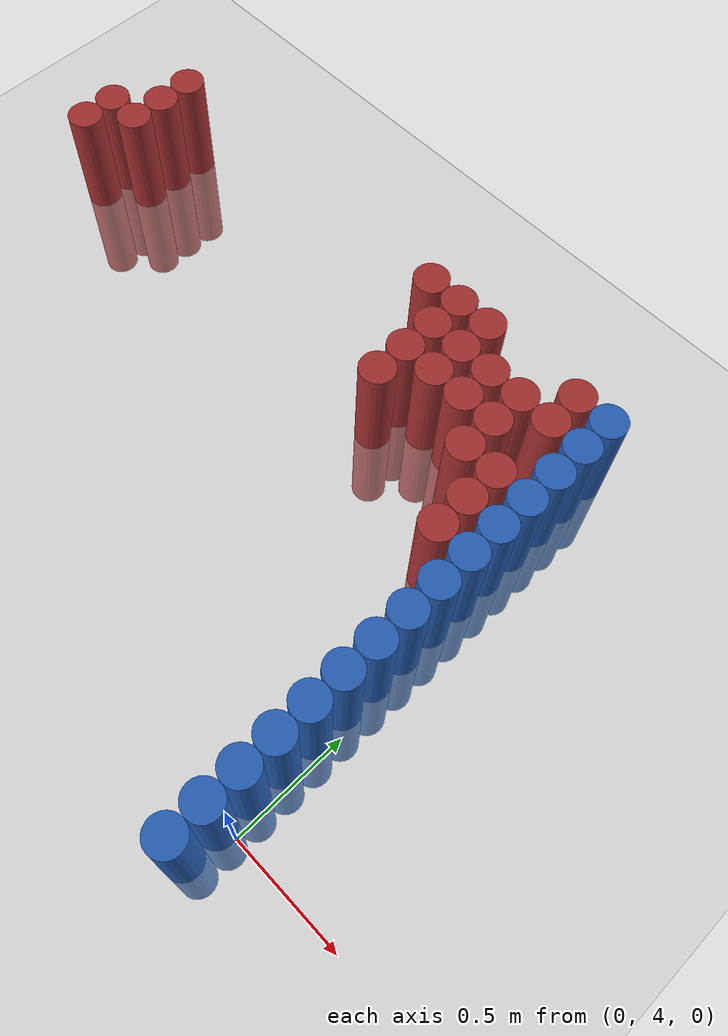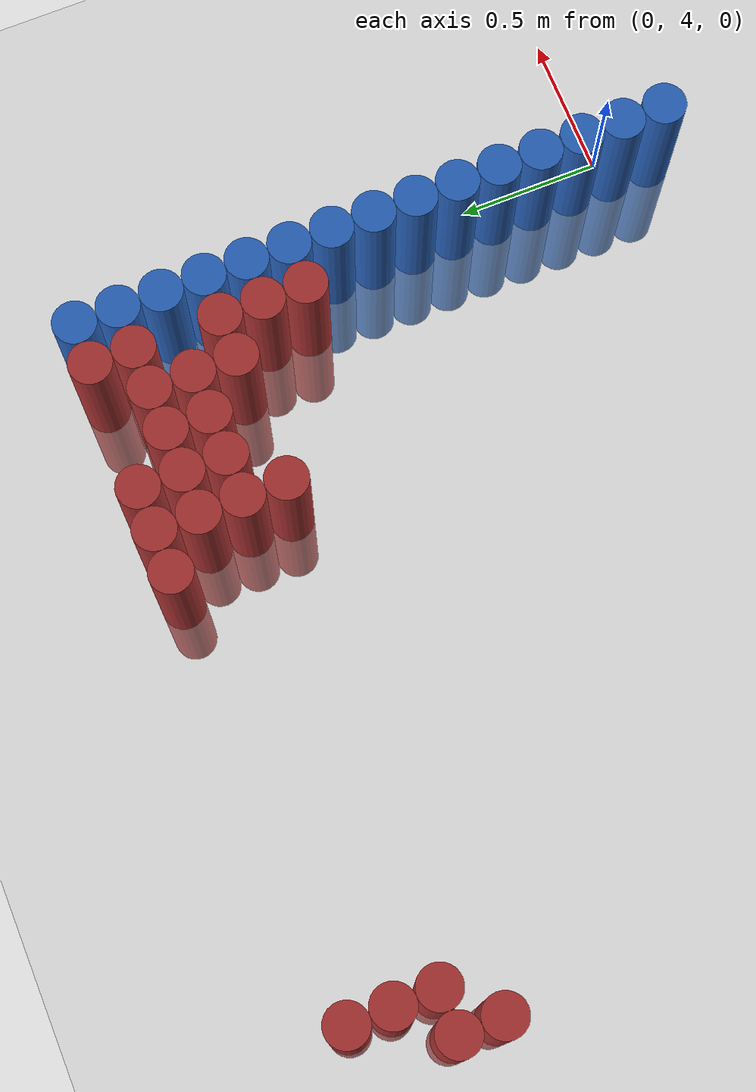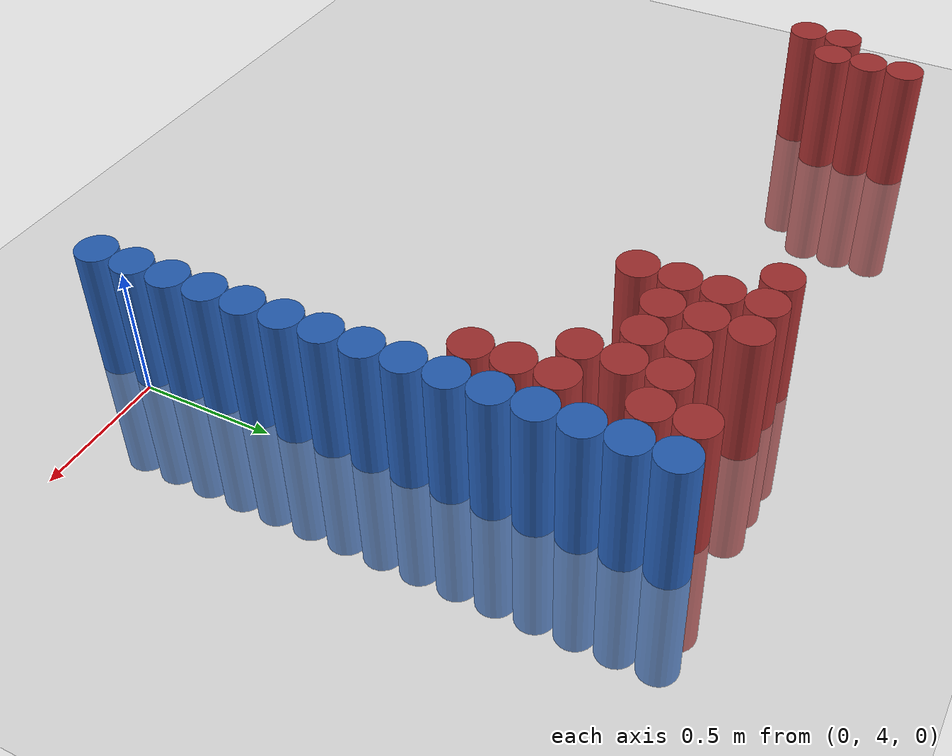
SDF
<sdf version="1.6">
 <world name="default">
  <model name="ground_plane">
   <static>1</static>
   <link name="link">
    <collision name="collision">
     <geometry><plane><normal>0 0 1</normal><size>100 100</size></plane></geometry>
     <surface><friction><ode><mu>100</mu><mu2>50</mu2></ode></friction></surface>
    </collision>
    <visual name="visual">
     <cast_shadows>0</cast_shadows>
     <geometry><plane><normal>0 0 1</normal><size>100 100</size></plane></geometry>
     <material>
      <script><uri>file://media/materials/scripts/gazebo.material</uri><name>Gazebo/Grey</name></script>
     </material>
    </visual>
   </link>
  </model>
  <model name="unit_cylinder_78">
   <static>1</static>
   <pose>-0.075000 3.825000 0.000000 0.000000 0.000000 0.000000</pose>
   <link name="link">
    <inertial>
     <mass>1</mass>
     <inertia><ixx>0.145833</ixx><ixy>0</ixy><ixz>0</ixz><iyy>0.145833</iyy><iyz>0</iyz><izz>0.125</izz></inertia>
    </inertial>
    <collision name="collision">
     <geometry><cylinder><radius>0.075000</radius><length>1</length></cylinder></geometry>
    </collision>
    <visual name="visual">
     <geometry><cylinder><radius>0.075000</radius><length>1</length></cylinder></geometry>
     <material>
      <ambient>0.152000 0.379000 0.720000 1</ambient>
      <diffuse>0.152000 0.379000 0.720000 1</diffuse>
     </material>
     <material>
      <script><name>Gazebo/Grey</name><uri>file://media/materials/scripts/gazebo.material</uri></script>
     </material>
    </visual>
    <sensor name="sensor_contact" type="contact"><contact><collision>collision</collision></contact></sensor>
   </link>
   <plugin filename="gz-sim-touchplugin-system" name="gz::sim::systems::TouchPlugin">
    <target>robot</target>
    <namespace>robot</namespace>
    <time>0.001</time>
    <enabled>true</enabled>
   </plugin>
  </model>
  <model name="unit_cylinder_80">
   <static>1</static>
   <pose>-0.075000 3.975000 0.000000 0.000000 0.000000 0.000000</pose>
   <link name="link">
    <inertial>
     <mass>1</mass>
     <inertia><ixx>0.145833</ixx><ixy>0</ixy><ixz>0</ixz><iyy>0.145833</iyy><iyz>0</iyz><izz>0.125</izz></inertia>
    </inertial>
    <collision name="collision">
     <geometry><cylinder><radius>0.075000</radius><length>1</length></cylinder></geometry>
    </collision>
    <visual name="visual">
     <geometry><cylinder><radius>0.075000</radius><length>1</length></cylinder></geometry>
     <material>
      <ambient>0.152000 0.379000 0.720000 1</ambient>
      <diffuse>0.152000 0.379000 0.720000 1</diffuse>
     </material>
     <material>
      <script><name>Gazebo/Grey</name><uri>file://media/materials/scripts/gazebo.material</uri></script>
     </material>
    </visual>
    <sensor name="sensor_contact" type="contact"><contact><collision>collision</collision></contact></sensor>
   </link>
   <plugin filename="gz-sim-touchplugin-system" name="gz::sim::systems::TouchPlugin">
    <target>robot</target>
    <namespace>robot</namespace>
    <time>0.001</time>
    <enabled>true</enabled>
   </plugin>
  </model>
  <model name="unit_cylinder_82">
   <static>1</static>
   <pose>-0.075000 4.125000 0.000000 0.000000 0.000000 0.000000</pose>
   <link name="link">
    <inertial>
     <mass>1</mass>
     <inertia><ixx>0.145833</ixx><ixy>0</ixy><ixz>0</ixz><iyy>0.145833</iyy><iyz>0</iyz><izz>0.125</izz></inertia>
    </inertial>
    <collision name="collision">
     <geometry><cylinder><radius>0.075000</radius><length>1</length></cylinder></geometry>
    </collision>
    <visual name="visual">
     <geometry><cylinder><radius>0.075000</radius><length>1</length></cylinder></geometry>
     <material>
      <ambient>0.152000 0.379000 0.720000 1</ambient>
      <diffuse>0.152000 0.379000 0.720000 1</diffuse>
     </material>
     <material>
      <script><name>Gazebo/Grey</name><uri>file://media/materials/scripts/gazebo.material</uri></script>
     </material>
    </visual>
    <sensor name="sensor_contact" type="contact"><contact><collision>collision</collision></contact></sensor>
   </link>
   <plugin filename="gz-sim-touchplugin-system" name="gz::sim::systems::TouchPlugin">
    <target>robot</target>
    <namespace>robot</namespace>
    <time>0.001</time>
    <enabled>true</enabled>
   </plugin>
  </model>
  <model name="unit_cylinder_84">
   <static>1</static>
   <pose>-0.075000 4.275000 0.000000 0.000000 0.000000 0.000000</pose>
   <link name="link">
    <inertial>
     <mass>1</mass>
     <inertia><ixx>0.145833</ixx><ixy>0</ixy><ixz>0</ixz><iyy>0.145833</iyy><iyz>0</iyz><izz>0.125</izz></inertia>
    </inertial>
    <collision name="collision">
     <geometry><cylinder><radius>0.075000</radius><length>1</length></cylinder></geometry>
    </collision>
    <visual name="visual">
     <geometry><cylinder><radius>0.075000</radius><length>1</length></cylinder></geometry>
     <material>
      <ambient>0.152000 0.379000 0.720000 1</ambient>
      <diffuse>0.152000 0.379000 0.720000 1</diffuse>
     </material>
     <material>
      <script><name>Gazebo/Grey</name><uri>file://media/materials/scripts/gazebo.material</uri></script>
     </material>
    </visual>
    <sensor name="sensor_contact" type="contact"><contact><collision>collision</collision></contact></sensor>
   </link>
   <plugin filename="gz-sim-touchplugin-system" name="gz::sim::systems::TouchPlugin">
    <target>robot</target>
    <namespace>robot</namespace>
    <time>0.001</time>
    <enabled>true</enabled>
   </plugin>
  </model>
  <model name="unit_cylinder_86">
   <static>1</static>
   <pose>-0.075000 4.425000 0.000000 0.000000 0.000000 0.000000</pose>
   <link name="link">
    <inertial>
     <mass>1</mass>
     <inertia><ixx>0.145833</ixx><ixy>0</ixy><ixz>0</ixz><iyy>0.145833</iyy><iyz>0</iyz><izz>0.125</izz></inertia>
    </inertial>
    <collision name="collision">
     <geometry><cylinder><radius>0.075000</radius><length>1</length></cylinder></geometry>
    </collision>
    <visual name="visual">
     <geometry><cylinder><radius>0.075000</radius><length>1</length></cylinder></geometry>
     <material>
      <ambient>0.152000 0.379000 0.720000 1</ambient>
      <diffuse>0.152000 0.379000 0.720000 1</diffuse>
     </material>
     <material>
      <script><name>Gazebo/Grey</name><uri>file://media/materials/scripts/gazebo.material</uri></script>
     </material>
    </visual>
    <sensor name="sensor_contact" type="contact"><contact><collision>collision</collision></contact></sensor>
   </link>
   <plugin filename="gz-sim-touchplugin-system" name="gz::sim::systems::TouchPlugin">
    <target>robot</target>
    <namespace>robot</namespace>
    <time>0.001</time>
    <enabled>true</enabled>
   </plugin>
  </model>
  <model name="unit_cylinder_88">
   <static>1</static>
   <pose>-0.075000 4.575000 0.000000 0.000000 0.000000 0.000000</pose>
   <link name="link">
    <inertial>
     <mass>1</mass>
     <inertia><ixx>0.145833</ixx><ixy>0</ixy><ixz>0</ixz><iyy>0.145833</iyy><iyz>0</iyz><izz>0.125</izz></inertia>
    </inertial>
    <collision name="collision">
     <geometry><cylinder><radius>0.075000</radius><length>1</length></cylinder></geometry>
    </collision>
    <visual name="visual">
     <geometry><cylinder><radius>0.075000</radius><length>1</length></cylinder></geometry>
     <material>
      <ambient>0.152000 0.379000 0.720000 1</ambient>
      <diffuse>0.152000 0.379000 0.720000 1</diffuse>
     </material>
     <material>
      <script><name>Gazebo/Grey</name><uri>file://media/materials/scripts/gazebo.material</uri></script>
     </material>
    </visual>
    <sensor name="sensor_contact" type="contact"><contact><collision>collision</collision></contact></sensor>
   </link>
   <plugin filename="gz-sim-touchplugin-system" name="gz::sim::systems::TouchPlugin">
    <target>robot</target>
    <namespace>robot</namespace>
    <time>0.001</time>
    <enabled>true</enabled>
   </plugin>
  </model>
  <model name="unit_cylinder_90">
   <static>1</static>
   <pose>-0.075000 4.725000 0.000000 0.000000 0.000000 0.000000</pose>
   <link name="link">
    <inertial>
     <mass>1</mass>
     <inertia><ixx>0.145833</ixx><ixy>0</ixy><ixz>0</ixz><iyy>0.145833</iyy><iyz>0</iyz><izz>0.125</izz></inertia>
    </inertial>
    <collision name="collision">
     <geometry><cylinder><radius>0.075000</radius><length>1</length></cylinder></geometry>
    </collision>
    <visual name="visual">
     <geometry><cylinder><radius>0.075000</radius><length>1</length></cylinder></geometry>
     <material>
      <ambient>0.152000 0.379000 0.720000 1</ambient>
      <diffuse>0.152000 0.379000 0.720000 1</diffuse>
     </material>
     <material>
      <script><name>Gazebo/Grey</name><uri>file://media/materials/scripts/gazebo.material</uri></script>
     </material>
    </visual>
    <sensor name="sensor_contact" type="contact"><contact><collision>collision</collision></contact></sensor>
   </link>
   <plugin filename="gz-sim-touchplugin-system" name="gz::sim::systems::TouchPlugin">
    <target>robot</target>
    <namespace>robot</namespace>
    <time>0.001</time>
    <enabled>true</enabled>
   </plugin>
  </model>
  <model name="unit_cylinder_92">
   <static>1</static>
   <pose>-0.075000 4.875000 0.000000 0.000000 0.000000 0.000000</pose>
   <link name="link">
    <inertial>
     <mass>1</mass>
     <inertia><ixx>0.145833</ixx><ixy>0</ixy><ixz>0</ixz><iyy>0.145833</iyy><iyz>0</iyz><izz>0.125</izz></inertia>
    </inertial>
    <collision name="collision">
     <geometry><cylinder><radius>0.075000</radius><length>1</length></cylinder></geometry>
    </collision>
    <visual name="visual">
     <geometry><cylinder><radius>0.075000</radius><length>1</length></cylinder></geometry>
     <material>
      <ambient>0.152000 0.379000 0.720000 1</ambient>
      <diffuse>0.152000 0.379000 0.720000 1</diffuse>
     </material>
     <material>
      <script><name>Gazebo/Grey</name><uri>file://media/materials/scripts/gazebo.material</uri></script>
     </material>
    </visual>
    <sensor name="sensor_contact" type="contact"><contact><collision>collision</collision></contact></sensor>
   </link>
   <plugin filename="gz-sim-touchplugin-system" name="gz::sim::systems::TouchPlugin">
    <target>robot</target>
    <namespace>robot</namespace>
    <time>0.001</time>
    <enabled>true</enabled>
   </plugin>
  </model>
  <model name="unit_cylinder_94">
   <static>1</static>
   <pose>-0.075000 5.025000 0.000000 0.000000 0.000000 0.000000</pose>
   <link name="link">
    <inertial>
     <mass>1</mass>
     <inertia><ixx>0.145833</ixx><ixy>0</ixy><ixz>0</ixz><iyy>0.145833</iyy><iyz>0</iyz><izz>0.125</izz></inertia>
    </inertial>
    <collision name="collision">
     <geometry><cylinder><radius>0.075000</radius><length>1</length></cylinder></geometry>
    </collision>
    <visual name="visual">
     <geometry><cylinder><radius>0.075000</radius><length>1</length></cylinder></geometry>
     <material>
      <ambient>0.152000 0.379000 0.720000 1</ambient>
      <diffuse>0.152000 0.379000 0.720000 1</diffuse>
     </material>
     <material>
      <script><name>Gazebo/Grey</name><uri>file://media/materials/scripts/gazebo.material</uri></script>
     </material>
    </visual>
    <sensor name="sensor_contact" type="contact"><contact><collision>collision</collision></contact></sensor>
   </link>
   <plugin filename="gz-sim-touchplugin-system" name="gz::sim::systems::TouchPlugin">
    <target>robot</target>
    <namespace>robot</namespace>
    <time>0.001</time>
    <enabled>true</enabled>
   </plugin>
  </model>
  <model name="unit_cylinder_198">
   <static>1</static>
   <pose>-2.625000 5.475000 0.000000 0.000000 0.000000 0.000000</pose>
   <link name="link">
    <inertial>
     <mass>1</mass>
     <inertia><ixx>0.145833</ixx><ixy>0</ixy><ixz>0</ixz><iyy>0.145833</iyy><iyz>0</iyz><izz>0.125</izz></inertia>
    </inertial>
    <collision name="collision">
     <geometry><cylinder><radius>0.075000</radius><length>1</length></cylinder></geometry>
    </collision>
    <visual name="visual">
     <geometry><cylinder><radius>0.075000</radius><length>1</length></cylinder></geometry>
     <material>
      <ambient>0.648000 0.192000 0.192000 1</ambient>
      <diffuse>0.648000 0.192000 0.192000 1</diffuse>
     </material>
     <material>
      <script><name>Gazebo/Grey</name><uri>file://media/materials/scripts/gazebo.material</uri></script>
     </material>
    </visual>
    <sensor name="sensor_contact" type="contact"><contact><collision>collision</collision></contact></sensor>
   </link>
   <plugin filename="gz-sim-touchplugin-system" name="gz::sim::systems::TouchPlugin">
    <target>robot</target>
    <namespace>robot</namespace>
    <time>0.001</time>
    <enabled>true</enabled>
   </plugin>
  </model>
  <model name="unit_cylinder_199">
   <static>1</static>
   <pose>-2.625000 5.625000 0.000000 0.000000 0.000000 0.000000</pose>
   <link name="link">
    <inertial>
     <mass>1</mass>
     <inertia><ixx>0.145833</ixx><ixy>0</ixy><ixz>0</ixz><iyy>0.145833</iyy><iyz>0</iyz><izz>0.125</izz></inertia>
    </inertial>
    <collision name="collision">
     <geometry><cylinder><radius>0.075000</radius><length>1</length></cylinder></geometry>
    </collision>
    <visual name="visual">
     <geometry><cylinder><radius>0.075000</radius><length>1</length></cylinder></geometry>
     <material>
      <ambient>0.648000 0.192000 0.192000 1</ambient>
      <diffuse>0.648000 0.192000 0.192000 1</diffuse>
     </material>
     <material>
      <script><name>Gazebo/Grey</name><uri>file://media/materials/scripts/gazebo.material</uri></script>
     </material>
    </visual>
    <sensor name="sensor_contact" type="contact"><contact><collision>collision</collision></contact></sensor>
   </link>
   <plugin filename="gz-sim-touchplugin-system" name="gz::sim::systems::TouchPlugin">
    <target>robot</target>
    <namespace>robot</namespace>
    <time>0.001</time>
    <enabled>true</enabled>
   </plugin>
  </model>
  <model name="unit_cylinder_206">
   <static>1</static>
   <pose>-2.475000 5.625000 0.000000 0.000000 0.000000 0.000000</pose>
   <link name="link">
    <inertial>
     <mass>1</mass>
     <inertia><ixx>0.145833</ixx><ixy>0</ixy><ixz>0</ixz><iyy>0.145833</iyy><iyz>0</iyz><izz>0.125</izz></inertia>
    </inertial>
    <collision name="collision">
     <geometry><cylinder><radius>0.075000</radius><length>1</length></cylinder></geometry>
    </collision>
    <visual name="visual">
     <geometry><cylinder><radius>0.075000</radius><length>1</length></cylinder></geometry>
     <material>
      <ambient>0.648000 0.192000 0.192000 1</ambient>
      <diffuse>0.648000 0.192000 0.192000 1</diffuse>
     </material>
     <material>
      <script><name>Gazebo/Grey</name><uri>file://media/materials/scripts/gazebo.material</uri></script>
     </material>
    </visual>
    <sensor name="sensor_contact" type="contact"><contact><collision>collision</collision></contact></sensor>
   </link>
   <plugin filename="gz-sim-touchplugin-system" name="gz::sim::systems::TouchPlugin">
    <target>robot</target>
    <namespace>robot</namespace>
    <time>0.001</time>
    <enabled>true</enabled>
   </plugin>
  </model>
  <model name="unit_cylinder_207">
   <static>1</static>
   <pose>-2.475000 5.775000 0.000000 0.000000 0.000000 0.000000</pose>
   <link name="link">
    <inertial>
     <mass>1</mass>
     <inertia><ixx>0.145833</ixx><ixy>0</ixy><ixz>0</ixz><iyy>0.145833</iyy><iyz>0</iyz><izz>0.125</izz></inertia>
    </inertial>
    <collision name="collision">
     <geometry><cylinder><radius>0.075000</radius><length>1</length></cylinder></geometry>
    </collision>
    <visual name="visual">
     <geometry><cylinder><radius>0.075000</radius><length>1</length></cylinder></geometry>
     <material>
      <ambient>0.648000 0.192000 0.192000 1</ambient>
      <diffuse>0.648000 0.192000 0.192000 1</diffuse>
     </material>
     <material>
      <script><name>Gazebo/Grey</name><uri>file://media/materials/scripts/gazebo.material</uri></script>
     </material>
    </visual>
    <sensor name="sensor_contact" type="contact"><contact><collision>collision</collision></contact></sensor>
   </link>
   <plugin filename="gz-sim-touchplugin-system" name="gz::sim::systems::TouchPlugin">
    <target>robot</target>
    <namespace>robot</namespace>
    <time>0.001</time>
    <enabled>true</enabled>
   </plugin>
  </model>
  <model name="unit_cylinder_208">
   <static>1</static>
   <pose>-2.475000 5.925000 0.000000 0.000000 0.000000 0.000000</pose>
   <link name="link">
    <inertial>
     <mass>1</mass>
     <inertia><ixx>0.145833</ixx><ixy>0</ixy><ixz>0</ixz><iyy>0.145833</iyy><iyz>0</iyz><izz>0.125</izz></inertia>
    </inertial>
    <collision name="collision">
     <geometry><cylinder><radius>0.075000</radius><length>1</length></cylinder></geometry>
    </collision>
    <visual name="visual">
     <geometry><cylinder><radius>0.075000</radius><length>1</length></cylinder></geometry>
     <material>
      <ambient>0.648000 0.192000 0.192000 1</ambient>
      <diffuse>0.648000 0.192000 0.192000 1</diffuse>
     </material>
     <material>
      <script><name>Gazebo/Grey</name><uri>file://media/materials/scripts/gazebo.material</uri></script>
     </material>
    </visual>
    <sensor name="sensor_contact" type="contact"><contact><collision>collision</collision></contact></sensor>
   </link>
   <plugin filename="gz-sim-touchplugin-system" name="gz::sim::systems::TouchPlugin">
    <target>robot</target>
    <namespace>robot</namespace>
    <time>0.001</time>
    <enabled>true</enabled>
   </plugin>
  </model>
  <model name="unit_cylinder_255">
   <static>1</static>
   <pose>-0.975000 5.925000 0.000000 0.000000 0.000000 0.000000</pose>
   <link name="link">
    <inertial>
     <mass>1</mass>
     <inertia><ixx>0.145833</ixx><ixy>0</ixy><ixz>0</ixz><iyy>0.145833</iyy><iyz>0</iyz><izz>0.125</izz></inertia>
    </inertial>
    <collision name="collision">
     <geometry><cylinder><radius>0.075000</radius><length>1</length></cylinder></geometry>
    </collision>
    <visual name="visual">
     <geometry><cylinder><radius>0.075000</radius><length>1</length></cylinder></geometry>
     <material>
      <ambient>0.648000 0.192000 0.192000 1</ambient>
      <diffuse>0.648000 0.192000 0.192000 1</diffuse>
     </material>
     <material>
      <script><name>Gazebo/Grey</name><uri>file://media/materials/scripts/gazebo.material</uri></script>
     </material>
    </visual>
    <sensor name="sensor_contact" type="contact"><contact><collision>collision</collision></contact></sensor>
   </link>
   <plugin filename="gz-sim-touchplugin-system" name="gz::sim::systems::TouchPlugin">
    <target>robot</target>
    <namespace>robot</namespace>
    <time>0.001</time>
    <enabled>true</enabled>
   </plugin>
  </model>
  <model name="unit_cylinder_259">
   <static>1</static>
   <pose>-0.825000 5.475000 0.000000 0.000000 0.000000 0.000000</pose>
   <link name="link">
    <inertial>
     <mass>1</mass>
     <inertia><ixx>0.145833</ixx><ixy>0</ixy><ixz>0</ixz><iyy>0.145833</iyy><iyz>0</iyz><izz>0.125</izz></inertia>
    </inertial>
    <collision name="collision">
     <geometry><cylinder><radius>0.075000</radius><length>1</length></cylinder></geometry>
    </collision>
    <visual name="visual">
     <geometry><cylinder><radius>0.075000</radius><length>1</length></cylinder></geometry>
     <material>
      <ambient>0.648000 0.192000 0.192000 1</ambient>
      <diffuse>0.648000 0.192000 0.192000 1</diffuse>
     </material>
     <material>
      <script><name>Gazebo/Grey</name><uri>file://media/materials/scripts/gazebo.material</uri></script>
     </material>
    </visual>
    <sensor name="sensor_contact" type="contact"><contact><collision>collision</collision></contact></sensor>
   </link>
   <plugin filename="gz-sim-touchplugin-system" name="gz::sim::systems::TouchPlugin">
    <target>robot</target>
    <namespace>robot</namespace>
    <time>0.001</time>
    <enabled>true</enabled>
   </plugin>
  </model>
  <model name="unit_cylinder_260">
   <static>1</static>
   <pose>-0.825000 5.625000 0.000000 0.000000 0.000000 0.000000</pose>
   <link name="link">
    <inertial>
     <mass>1</mass>
     <inertia><ixx>0.145833</ixx><ixy>0</ixy><ixz>0</ixz><iyy>0.145833</iyy><iyz>0</iyz><izz>0.125</izz></inertia>
    </inertial>
    <collision name="collision">
     <geometry><cylinder><radius>0.075000</radius><length>1</length></cylinder></geometry>
    </collision>
    <visual name="visual">
     <geometry><cylinder><radius>0.075000</radius><length>1</length></cylinder></geometry>
     <material>
      <ambient>0.648000 0.192000 0.192000 1</ambient>
      <diffuse>0.648000 0.192000 0.192000 1</diffuse>
     </material>
     <material>
      <script><name>Gazebo/Grey</name><uri>file://media/materials/scripts/gazebo.material</uri></script>
     </material>
    </visual>
    <sensor name="sensor_contact" type="contact"><contact><collision>collision</collision></contact></sensor>
   </link>
   <plugin filename="gz-sim-touchplugin-system" name="gz::sim::systems::TouchPlugin">
    <target>robot</target>
    <namespace>robot</namespace>
    <time>0.001</time>
    <enabled>true</enabled>
   </plugin>
  </model>
  <model name="unit_cylinder_261">
   <static>1</static>
   <pose>-0.825000 5.775000 0.000000 0.000000 0.000000 0.000000</pose>
   <link name="link">
    <inertial>
     <mass>1</mass>
     <inertia><ixx>0.145833</ixx><ixy>0</ixy><ixz>0</ixz><iyy>0.145833</iyy><iyz>0</iyz><izz>0.125</izz></inertia>
    </inertial>
    <collision name="collision">
     <geometry><cylinder><radius>0.075000</radius><length>1</length></cylinder></geometry>
    </collision>
    <visual name="visual">
     <geometry><cylinder><radius>0.075000</radius><length>1</length></cylinder></geometry>
     <material>
      <ambient>0.648000 0.192000 0.192000 1</ambient>
      <diffuse>0.648000 0.192000 0.192000 1</diffuse>
     </material>
     <material>
      <script><name>Gazebo/Grey</name><uri>file://media/materials/scripts/gazebo.material</uri></script>
     </material>
    </visual>
    <sensor name="sensor_contact" type="contact"><contact><collision>collision</collision></contact></sensor>
   </link>
   <plugin filename="gz-sim-touchplugin-system" name="gz::sim::systems::TouchPlugin">
    <target>robot</target>
    <namespace>robot</namespace>
    <time>0.001</time>
    <enabled>true</enabled>
   </plugin>
  </model>
  <model name="unit_cylinder_262">
   <static>1</static>
   <pose>-0.825000 5.925000 0.000000 0.000000 0.000000 0.000000</pose>
   <link name="link">
    <inertial>
     <mass>1</mass>
     <inertia><ixx>0.145833</ixx><ixy>0</ixy><ixz>0</ixz><iyy>0.145833</iyy><iyz>0</iyz><izz>0.125</izz></inertia>
    </inertial>
    <collision name="collision">
     <geometry><cylinder><radius>0.075000</radius><length>1</length></cylinder></geometry>
    </collision>
    <visual name="visual">
     <geometry><cylinder><radius>0.075000</radius><length>1</length></cylinder></geometry>
     <material>
      <ambient>0.648000 0.192000 0.192000 1</ambient>
      <diffuse>0.648000 0.192000 0.192000 1</diffuse>
     </material>
     <material>
      <script><name>Gazebo/Grey</name><uri>file://media/materials/scripts/gazebo.material</uri></script>
     </material>
    </visual>
    <sensor name="sensor_contact" type="contact"><contact><collision>collision</collision></contact></sensor>
   </link>
   <plugin filename="gz-sim-touchplugin-system" name="gz::sim::systems::TouchPlugin">
    <target>robot</target>
    <namespace>robot</namespace>
    <time>0.001</time>
    <enabled>true</enabled>
   </plugin>
  </model>
  <model name="unit_cylinder_268">
   <static>1</static>
   <pose>-0.675000 5.625000 0.000000 0.000000 0.000000 0.000000</pose>
   <link name="link">
    <inertial>
     <mass>1</mass>
     <inertia><ixx>0.145833</ixx><ixy>0</ixy><ixz>0</ixz><iyy>0.145833</iyy><iyz>0</iyz><izz>0.125</izz></inertia>
    </inertial>
    <collision name="collision">
     <geometry><cylinder><radius>0.075000</radius><length>1</length></cylinder></geometry>
    </collision>
    <visual name="visual">
     <geometry><cylinder><radius>0.075000</radius><length>1</length></cylinder></geometry>
     <material>
      <ambient>0.648000 0.192000 0.192000 1</ambient>
      <diffuse>0.648000 0.192000 0.192000 1</diffuse>
     </material>
     <material>
      <script><name>Gazebo/Grey</name><uri>file://media/materials/scripts/gazebo.material</uri></script>
     </material>
    </visual>
    <sensor name="sensor_contact" type="contact"><contact><collision>collision</collision></contact></sensor>
   </link>
   <plugin filename="gz-sim-touchplugin-system" name="gz::sim::systems::TouchPlugin">
    <target>robot</target>
    <namespace>robot</namespace>
    <time>0.001</time>
    <enabled>true</enabled>
   </plugin>
  </model>
  <model name="unit_cylinder_269">
   <static>1</static>
   <pose>-0.675000 5.775000 0.000000 0.000000 0.000000 0.000000</pose>
   <link name="link">
    <inertial>
     <mass>1</mass>
     <inertia><ixx>0.145833</ixx><ixy>0</ixy><ixz>0</ixz><iyy>0.145833</iyy><iyz>0</iyz><izz>0.125</izz></inertia>
    </inertial>
    <collision name="collision">
     <geometry><cylinder><radius>0.075000</radius><length>1</length></cylinder></geometry>
    </collision>
    <visual name="visual">
     <geometry><cylinder><radius>0.075000</radius><length>1</length></cylinder></geometry>
     <material>
      <ambient>0.648000 0.192000 0.192000 1</ambient>
      <diffuse>0.648000 0.192000 0.192000 1</diffuse>
     </material>
     <material>
      <script><name>Gazebo/Grey</name><uri>file://media/materials/scripts/gazebo.material</uri></script>
     </material>
    </visual>
    <sensor name="sensor_contact" type="contact"><contact><collision>collision</collision></contact></sensor>
   </link>
   <plugin filename="gz-sim-touchplugin-system" name="gz::sim::systems::TouchPlugin">
    <target>robot</target>
    <namespace>robot</namespace>
    <time>0.001</time>
    <enabled>true</enabled>
   </plugin>
  </model>
  <model name="unit_cylinder_270">
   <static>1</static>
   <pose>-0.675000 5.925000 0.000000 0.000000 0.000000 0.000000</pose>
   <link name="link">
    <inertial>
     <mass>1</mass>
     <inertia><ixx>0.145833</ixx><ixy>0</ixy><ixz>0</ixz><iyy>0.145833</iyy><iyz>0</iyz><izz>0.125</izz></inertia>
    </inertial>
    <collision name="collision">
     <geometry><cylinder><radius>0.075000</radius><length>1</length></cylinder></geometry>
    </collision>
    <visual name="visual">
     <geometry><cylinder><radius>0.075000</radius><length>1</length></cylinder></geometry>
     <material>
      <ambient>0.648000 0.192000 0.192000 1</ambient>
      <diffuse>0.648000 0.192000 0.192000 1</diffuse>
     </material>
     <material>
      <script><name>Gazebo/Grey</name><uri>file://media/materials/scripts/gazebo.material</uri></script>
     </material>
    </visual>
    <sensor name="sensor_contact" type="contact"><contact><collision>collision</collision></contact></sensor>
   </link>
   <plugin filename="gz-sim-touchplugin-system" name="gz::sim::systems::TouchPlugin">
    <target>robot</target>
    <namespace>robot</namespace>
    <time>0.001</time>
    <enabled>true</enabled>
   </plugin>
  </model>
  <model name="unit_cylinder_279">
   <static>1</static>
   <pose>-0.525000 5.625000 0.000000 0.000000 0.000000 0.000000</pose>
   <link name="link">
    <inertial>
     <mass>1</mass>
     <inertia><ixx>0.145833</ixx><ixy>0</ixy><ixz>0</ixz><iyy>0.145833</iyy><iyz>0</iyz><izz>0.125</izz></inertia>
    </inertial>
    <collision name="collision">
     <geometry><cylinder><radius>0.075000</radius><length>1</length></cylinder></geometry>
    </collision>
    <visual name="visual">
     <geometry><cylinder><radius>0.075000</radius><length>1</length></cylinder></geometry>
     <material>
      <ambient>0.648000 0.192000 0.192000 1</ambient>
      <diffuse>0.648000 0.192000 0.192000 1</diffuse>
     </material>
     <material>
      <script><name>Gazebo/Grey</name><uri>file://media/materials/scripts/gazebo.material</uri></script>
     </material>
    </visual>
    <sensor name="sensor_contact" type="contact"><contact><collision>collision</collision></contact></sensor>
   </link>
   <plugin filename="gz-sim-touchplugin-system" name="gz::sim::systems::TouchPlugin">
    <target>robot</target>
    <namespace>robot</namespace>
    <time>0.001</time>
    <enabled>true</enabled>
   </plugin>
  </model>
  <model name="unit_cylinder_280">
   <static>1</static>
   <pose>-0.525000 5.775000 0.000000 0.000000 0.000000 0.000000</pose>
   <link name="link">
    <inertial>
     <mass>1</mass>
     <inertia><ixx>0.145833</ixx><ixy>0</ixy><ixz>0</ixz><iyy>0.145833</iyy><iyz>0</iyz><izz>0.125</izz></inertia>
    </inertial>
    <collision name="collision">
     <geometry><cylinder><radius>0.075000</radius><length>1</length></cylinder></geometry>
    </collision>
    <visual name="visual">
     <geometry><cylinder><radius>0.075000</radius><length>1</length></cylinder></geometry>
     <material>
      <ambient>0.648000 0.192000 0.192000 1</ambient>
      <diffuse>0.648000 0.192000 0.192000 1</diffuse>
     </material>
     <material>
      <script><name>Gazebo/Grey</name><uri>file://media/materials/scripts/gazebo.material</uri></script>
     </material>
    </visual>
    <sensor name="sensor_contact" type="contact"><contact><collision>collision</collision></contact></sensor>
   </link>
   <plugin filename="gz-sim-touchplugin-system" name="gz::sim::systems::TouchPlugin">
    <target>robot</target>
    <namespace>robot</namespace>
    <time>0.001</time>
    <enabled>true</enabled>
   </plugin>
  </model>
  <model name="unit_cylinder_294">
   <static>1</static>
   <pose>-0.375000 5.475000 0.000000 0.000000 0.000000 0.000000</pose>
   <link name="link">
    <inertial>
     <mass>1</mass>
     <inertia><ixx>0.145833</ixx><ixy>0</ixy><ixz>0</ixz><iyy>0.145833</iyy><iyz>0</iyz><izz>0.125</izz></inertia>
    </inertial>
    <collision name="collision">
     <geometry><cylinder><radius>0.075000</radius><length>1</length></cylinder></geometry>
    </collision>
    <visual name="visual">
     <geometry><cylinder><radius>0.075000</radius><length>1</length></cylinder></geometry>
     <material>
      <ambient>0.648000 0.192000 0.192000 1</ambient>
      <diffuse>0.648000 0.192000 0.192000 1</diffuse>
     </material>
     <material>
      <script><name>Gazebo/Grey</name><uri>file://media/materials/scripts/gazebo.material</uri></script>
     </material>
    </visual>
    <sensor name="sensor_contact" type="contact"><contact><collision>collision</collision></contact></sensor>
   </link>
   <plugin filename="gz-sim-touchplugin-system" name="gz::sim::systems::TouchPlugin">
    <target>robot</target>
    <namespace>robot</namespace>
    <time>0.001</time>
    <enabled>true</enabled>
   </plugin>
  </model>
  <model name="unit_cylinder_295">
   <static>1</static>
   <pose>-0.375000 5.625000 0.000000 0.000000 0.000000 0.000000</pose>
   <link name="link">
    <inertial>
     <mass>1</mass>
     <inertia><ixx>0.145833</ixx><ixy>0</ixy><ixz>0</ixz><iyy>0.145833</iyy><iyz>0</iyz><izz>0.125</izz></inertia>
    </inertial>
    <collision name="collision">
     <geometry><cylinder><radius>0.075000</radius><length>1</length></cylinder></geometry>
    </collision>
    <visual name="visual">
     <geometry><cylinder><radius>0.075000</radius><length>1</length></cylinder></geometry>
     <material>
      <ambient>0.648000 0.192000 0.192000 1</ambient>
      <diffuse>0.648000 0.192000 0.192000 1</diffuse>
     </material>
     <material>
      <script><name>Gazebo/Grey</name><uri>file://media/materials/scripts/gazebo.material</uri></script>
     </material>
    </visual>
    <sensor name="sensor_contact" type="contact"><contact><collision>collision</collision></contact></sensor>
   </link>
   <plugin filename="gz-sim-touchplugin-system" name="gz::sim::systems::TouchPlugin">
    <target>robot</target>
    <namespace>robot</namespace>
    <time>0.001</time>
    <enabled>true</enabled>
   </plugin>
  </model>
  <model name="unit_cylinder_296">
   <static>1</static>
   <pose>-0.375000 5.775000 0.000000 0.000000 0.000000 0.000000</pose>
   <link name="link">
    <inertial>
     <mass>1</mass>
     <inertia><ixx>0.145833</ixx><ixy>0</ixy><ixz>0</ixz><iyy>0.145833</iyy><iyz>0</iyz><izz>0.125</izz></inertia>
    </inertial>
    <collision name="collision">
     <geometry><cylinder><radius>0.075000</radius><length>1</length></cylinder></geometry>
    </collision>
    <visual name="visual">
     <geometry><cylinder><radius>0.075000</radius><length>1</length></cylinder></geometry>
     <material>
      <ambient>0.648000 0.192000 0.192000 1</ambient>
      <diffuse>0.648000 0.192000 0.192000 1</diffuse>
     </material>
     <material>
      <script><name>Gazebo/Grey</name><uri>file://media/materials/scripts/gazebo.material</uri></script>
     </material>
    </visual>
    <sensor name="sensor_contact" type="contact"><contact><collision>collision</collision></contact></sensor>
   </link>
   <plugin filename="gz-sim-touchplugin-system" name="gz::sim::systems::TouchPlugin">
    <target>robot</target>
    <namespace>robot</namespace>
    <time>0.001</time>
    <enabled>true</enabled>
   </plugin>
  </model>
  <model name="unit_cylinder_305">
   <static>1</static>
   <pose>-0.225000 5.175000 0.000000 0.000000 0.000000 0.000000</pose>
   <link name="link">
    <inertial>
     <mass>1</mass>
     <inertia><ixx>0.145833</ixx><ixy>0</ixy><ixz>0</ixz><iyy>0.145833</iyy><iyz>0</iyz><izz>0.125</izz></inertia>
    </inertial>
    <collision name="collision">
     <geometry><cylinder><radius>0.075000</radius><length>1</length></cylinder></geometry>
    </collision>
    <visual name="visual">
     <geometry><cylinder><radius>0.075000</radius><length>1</length></cylinder></geometry>
     <material>
      <ambient>0.648000 0.192000 0.192000 1</ambient>
      <diffuse>0.648000 0.192000 0.192000 1</diffuse>
     </material>
     <material>
      <script><name>Gazebo/Grey</name><uri>file://media/materials/scripts/gazebo.material</uri></script>
     </material>
    </visual>
    <sensor name="sensor_contact" type="contact"><contact><collision>collision</collision></contact></sensor>
   </link>
   <plugin filename="gz-sim-touchplugin-system" name="gz::sim::systems::TouchPlugin">
    <target>robot</target>
    <namespace>robot</namespace>
    <time>0.001</time>
    <enabled>true</enabled>
   </plugin>
  </model>
  <model name="unit_cylinder_306">
   <static>1</static>
   <pose>-0.225000 5.325000 0.000000 0.000000 0.000000 0.000000</pose>
   <link name="link">
    <inertial>
     <mass>1</mass>
     <inertia><ixx>0.145833</ixx><ixy>0</ixy><ixz>0</ixz><iyy>0.145833</iyy><iyz>0</iyz><izz>0.125</izz></inertia>
    </inertial>
    <collision name="collision">
     <geometry><cylinder><radius>0.075000</radius><length>1</length></cylinder></geometry>
    </collision>
    <visual name="visual">
     <geometry><cylinder><radius>0.075000</radius><length>1</length></cylinder></geometry>
     <material>
      <ambient>0.648000 0.192000 0.192000 1</ambient>
      <diffuse>0.648000 0.192000 0.192000 1</diffuse>
     </material>
     <material>
      <script><name>Gazebo/Grey</name><uri>file://media/materials/scripts/gazebo.material</uri></script>
     </material>
    </visual>
    <sensor name="sensor_contact" type="contact"><contact><collision>collision</collision></contact></sensor>
   </link>
   <plugin filename="gz-sim-touchplugin-system" name="gz::sim::systems::TouchPlugin">
    <target>robot</target>
    <namespace>robot</namespace>
    <time>0.001</time>
    <enabled>true</enabled>
   </plugin>
  </model>
  <model name="unit_cylinder_307">
   <static>1</static>
   <pose>-0.225000 5.475000 0.000000 0.000000 0.000000 0.000000</pose>
   <link name="link">
    <inertial>
     <mass>1</mass>
     <inertia><ixx>0.145833</ixx><ixy>0</ixy><ixz>0</ixz><iyy>0.145833</iyy><iyz>0</iyz><izz>0.125</izz></inertia>
    </inertial>
    <collision name="collision">
     <geometry><cylinder><radius>0.075000</radius><length>1</length></cylinder></geometry>
    </collision>
    <visual name="visual">
     <geometry><cylinder><radius>0.075000</radius><length>1</length></cylinder></geometry>
     <material>
      <ambient>0.648000 0.192000 0.192000 1</ambient>
      <diffuse>0.648000 0.192000 0.192000 1</diffuse>
     </material>
     <material>
      <script><name>Gazebo/Grey</name><uri>file://media/materials/scripts/gazebo.material</uri></script>
     </material>
    </visual>
    <sensor name="sensor_contact" type="contact"><contact><collision>collision</collision></contact></sensor>
   </link>
   <plugin filename="gz-sim-touchplugin-system" name="gz::sim::systems::TouchPlugin">
    <target>robot</target>
    <namespace>robot</namespace>
    <time>0.001</time>
    <enabled>true</enabled>
   </plugin>
  </model>
  <model name="unit_cylinder_308">
   <static>1</static>
   <pose>-0.225000 5.775000 0.000000 0.000000 0.000000 0.000000</pose>
   <link name="link">
    <inertial>
     <mass>1</mass>
     <inertia><ixx>0.145833</ixx><ixy>0</ixy><ixz>0</ixz><iyy>0.145833</iyy><iyz>0</iyz><izz>0.125</izz></inertia>
    </inertial>
    <collision name="collision">
     <geometry><cylinder><radius>0.075000</radius><length>1</length></cylinder></geometry>
    </collision>
    <visual name="visual">
     <geometry><cylinder><radius>0.075000</radius><length>1</length></cylinder></geometry>
     <material>
      <ambient>0.648000 0.192000 0.192000 1</ambient>
      <diffuse>0.648000 0.192000 0.192000 1</diffuse>
     </material>
     <material>
      <script><name>Gazebo/Grey</name><uri>file://media/materials/scripts/gazebo.material</uri></script>
     </material>
    </visual>
    <sensor name="sensor_contact" type="contact"><contact><collision>collision</collision></contact></sensor>
   </link>
   <plugin filename="gz-sim-touchplugin-system" name="gz::sim::systems::TouchPlugin">
    <target>robot</target>
    <namespace>robot</namespace>
    <time>0.001</time>
    <enabled>true</enabled>
   </plugin>
  </model>
  <model name="unit_cylinder_309">
   <static>1</static>
   <pose>-0.225000 5.925000 0.000000 0.000000 0.000000 0.000000</pose>
   <link name="link">
    <inertial>
     <mass>1</mass>
     <inertia><ixx>0.145833</ixx><ixy>0</ixy><ixz>0</ixz><iyy>0.145833</iyy><iyz>0</iyz><izz>0.125</izz></inertia>
    </inertial>
    <collision name="collision">
     <geometry><cylinder><radius>0.075000</radius><length>1</length></cylinder></geometry>
    </collision>
    <visual name="visual">
     <geometry><cylinder><radius>0.075000</radius><length>1</length></cylinder></geometry>
     <material>
      <ambient>0.648000 0.192000 0.192000 1</ambient>
      <diffuse>0.648000 0.192000 0.192000 1</diffuse>
     </material>
     <material>
      <script><name>Gazebo/Grey</name><uri>file://media/materials/scripts/gazebo.material</uri></script>
     </material>
    </visual>
    <sensor name="sensor_contact" type="contact"><contact><collision>collision</collision></contact></sensor>
   </link>
   <plugin filename="gz-sim-touchplugin-system" name="gz::sim::systems::TouchPlugin">
    <target>robot</target>
    <namespace>robot</namespace>
    <time>0.001</time>
    <enabled>true</enabled>
   </plugin>
  </model>
  <model name="unit_cylinder_317">
   <static>1</static>
   <pose>-0.075000 5.175000 0.000000 0.000000 0.000000 0.000000</pose>
   <link name="link">
    <inertial>
     <mass>1</mass>
     <inertia><ixx>0.145833</ixx><ixy>0</ixy><ixz>0</ixz><iyy>0.145833</iyy><iyz>0</iyz><izz>0.125</izz></inertia>
    </inertial>
    <collision name="collision">
     <geometry><cylinder><radius>0.075000</radius><length>1</length></cylinder></geometry>
    </collision>
    <visual name="visual">
     <geometry><cylinder><radius>0.075000</radius><length>1</length></cylinder></geometry>
     <material>
      <ambient>0.152000 0.379000 0.720000 1</ambient>
      <diffuse>0.152000 0.379000 0.720000 1</diffuse>
     </material>
     <material>
      <script><name>Gazebo/Grey</name><uri>file://media/materials/scripts/gazebo.material</uri></script>
     </material>
    </visual>
    <sensor name="sensor_contact" type="contact"><contact><collision>collision</collision></contact></sensor>
   </link>
   <plugin filename="gz-sim-touchplugin-system" name="gz::sim::systems::TouchPlugin">
    <target>robot</target>
    <namespace>robot</namespace>
    <time>0.001</time>
    <enabled>true</enabled>
   </plugin>
  </model>
  <model name="unit_cylinder_318">
   <static>1</static>
   <pose>-0.075000 5.325000 0.000000 0.000000 0.000000 0.000000</pose>
   <link name="link">
    <inertial>
     <mass>1</mass>
     <inertia><ixx>0.145833</ixx><ixy>0</ixy><ixz>0</ixz><iyy>0.145833</iyy><iyz>0</iyz><izz>0.125</izz></inertia>
    </inertial>
    <collision name="collision">
     <geometry><cylinder><radius>0.075000</radius><length>1</length></cylinder></geometry>
    </collision>
    <visual name="visual">
     <geometry><cylinder><radius>0.075000</radius><length>1</length></cylinder></geometry>
     <material>
      <ambient>0.152000 0.379000 0.720000 1</ambient>
      <diffuse>0.152000 0.379000 0.720000 1</diffuse>
     </material>
     <material>
      <script><name>Gazebo/Grey</name><uri>file://media/materials/scripts/gazebo.material</uri></script>
     </material>
    </visual>
    <sensor name="sensor_contact" type="contact"><contact><collision>collision</collision></contact></sensor>
   </link>
   <plugin filename="gz-sim-touchplugin-system" name="gz::sim::systems::TouchPlugin">
    <target>robot</target>
    <namespace>robot</namespace>
    <time>0.001</time>
    <enabled>true</enabled>
   </plugin>
  </model>
  <model name="unit_cylinder_319">
   <static>1</static>
   <pose>-0.075000 5.475000 0.000000 0.000000 0.000000 0.000000</pose>
   <link name="link">
    <inertial>
     <mass>1</mass>
     <inertia><ixx>0.145833</ixx><ixy>0</ixy><ixz>0</ixz><iyy>0.145833</iyy><iyz>0</iyz><izz>0.125</izz></inertia>
    </inertial>
    <collision name="collision">
     <geometry><cylinder><radius>0.075000</radius><length>1</length></cylinder></geometry>
    </collision>
    <visual name="visual">
     <geometry><cylinder><radius>0.075000</radius><length>1</length></cylinder></geometry>
     <material>
      <ambient>0.152000 0.379000 0.720000 1</ambient>
      <diffuse>0.152000 0.379000 0.720000 1</diffuse>
     </material>
     <material>
      <script><name>Gazebo/Grey</name><uri>file://media/materials/scripts/gazebo.material</uri></script>
     </material>
    </visual>
    <sensor name="sensor_contact" type="contact"><contact><collision>collision</collision></contact></sensor>
   </link>
   <plugin filename="gz-sim-touchplugin-system" name="gz::sim::systems::TouchPlugin">
    <target>robot</target>
    <namespace>robot</namespace>
    <time>0.001</time>
    <enabled>true</enabled>
   </plugin>
  </model>
  <model name="unit_cylinder_320">
   <static>1</static>
   <pose>-0.075000 5.625000 0.000000 0.000000 0.000000 0.000000</pose>
   <link name="link">
    <inertial>
     <mass>1</mass>
     <inertia><ixx>0.145833</ixx><ixy>0</ixy><ixz>0</ixz><iyy>0.145833</iyy><iyz>0</iyz><izz>0.125</izz></inertia>
    </inertial>
    <collision name="collision">
     <geometry><cylinder><radius>0.075000</radius><length>1</length></cylinder></geometry>
    </collision>
    <visual name="visual">
     <geometry><cylinder><radius>0.075000</radius><length>1</length></cylinder></geometry>
     <material>
      <ambient>0.152000 0.379000 0.720000 1</ambient>
      <diffuse>0.152000 0.379000 0.720000 1</diffuse>
     </material>
     <material>
      <script><name>Gazebo/Grey</name><uri>file://media/materials/scripts/gazebo.material</uri></script>
     </material>
    </visual>
    <sensor name="sensor_contact" type="contact"><contact><collision>collision</collision></contact></sensor>
   </link>
   <plugin filename="gz-sim-touchplugin-system" name="gz::sim::systems::TouchPlugin">
    <target>robot</target>
    <namespace>robot</namespace>
    <time>0.001</time>
    <enabled>true</enabled>
   </plugin>
  </model>
  <model name="unit_cylinder_321">
   <static>1</static>
   <pose>-0.075000 5.775000 0.000000 0.000000 0.000000 0.000000</pose>
   <link name="link">
    <inertial>
     <mass>1</mass>
     <inertia><ixx>0.145833</ixx><ixy>0</ixy><ixz>0</ixz><iyy>0.145833</iyy><iyz>0</iyz><izz>0.125</izz></inertia>
    </inertial>
    <collision name="collision">
     <geometry><cylinder><radius>0.075000</radius><length>1</length></cylinder></geometry>
    </collision>
    <visual name="visual">
     <geometry><cylinder><radius>0.075000</radius><length>1</length></cylinder></geometry>
     <material>
      <ambient>0.152000 0.379000 0.720000 1</ambient>
      <diffuse>0.152000 0.379000 0.720000 1</diffuse>
     </material>
     <material>
      <script><name>Gazebo/Grey</name><uri>file://media/materials/scripts/gazebo.material</uri></script>
     </material>
    </visual>
    <sensor name="sensor_contact" type="contact"><contact><collision>collision</collision></contact></sensor>
   </link>
   <plugin filename="gz-sim-touchplugin-system" name="gz::sim::systems::TouchPlugin">
    <target>robot</target>
    <namespace>robot</namespace>
    <time>0.001</time>
    <enabled>true</enabled>
   </plugin>
  </model>
  <model name="unit_cylinder_322">
   <static>1</static>
   <pose>-0.075000 5.925000 0.000000 0.000000 0.000000 0.000000</pose>
   <link name="link">
    <inertial>
     <mass>1</mass>
     <inertia><ixx>0.145833</ixx><ixy>0</ixy><ixz>0</ixz><iyy>0.145833</iyy><iyz>0</iyz><izz>0.125</izz></inertia>
    </inertial>
    <collision name="collision">
     <geometry><cylinder><radius>0.075000</radius><length>1</length></cylinder></geometry>
    </collision>
    <visual name="visual">
     <geometry><cylinder><radius>0.075000</radius><length>1</length></cylinder></geometry>
     <material>
      <ambient>0.152000 0.379000 0.720000 1</ambient>
      <diffuse>0.152000 0.379000 0.720000 1</diffuse>
     </material>
     <material>
      <script><name>Gazebo/Grey</name><uri>file://media/materials/scripts/gazebo.material</uri></script>
     </material>
    </visual>
    <sensor name="sensor_contact" type="contact"><contact><collision>collision</collision></contact></sensor>
   </link>
   <plugin filename="gz-sim-touchplugin-system" name="gz::sim::systems::TouchPlugin">
    <target>robot</target>
    <namespace>robot</namespace>
    <time>0.001</time>
    <enabled>true</enabled>
   </plugin>
  </model>
 </world>
</sdf>
